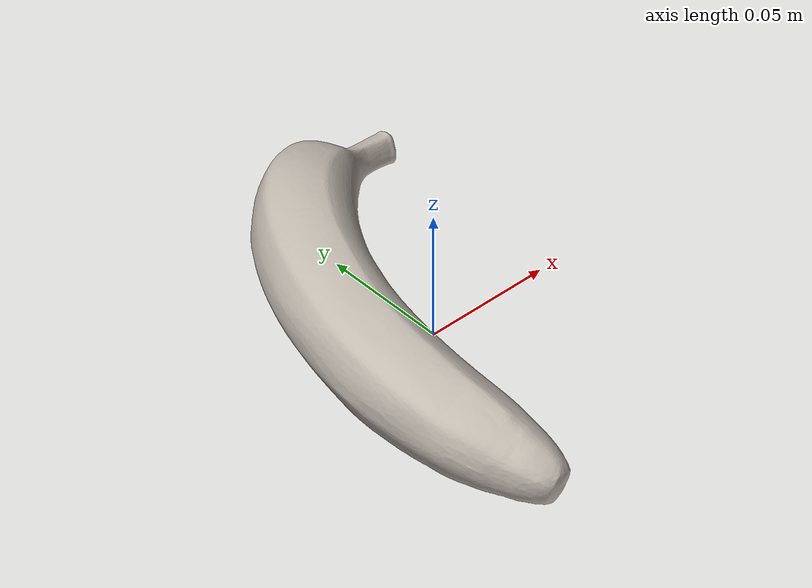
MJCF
<mujoco model="banana">
  <compiler angle="radian" meshdir="." texturedir="."/>
  <asset>
    <mesh name="banana_mesh" file="banana.obj" maxhullvert="64"/>
    <texture name="banana_tex" type="2d" file="banana.png"/>
    <material name="banana_mat" texture="banana_tex" specular="0.25" shininess="0.3"/>
  </asset>
  <worldbody>
    <body name="banana" pos="0 0 0">
      <inertial pos="-0.0188234 0.0140489 0.0171213" quat="0.624651 0.460717 -0.532813 0.337136" mass="0.12" diaginertia="0.00031319 0.000296919 3.25017e-05"/>
      <site name="banana_center" pos="0 0 0" size="0.005" rgba="0 0 0 0"/>
      <geom name="banana_vis0" type="mesh" mesh="banana_mesh" pos="-0.011476 0.0073435 0.000407002" material="banana_mat" group="2" contype="0" conaffinity="0"/>
      <geom name="banana_col1" type="mesh" mesh="banana_mesh" pos="-0.011476 0.0073435 0.000407002" rgba="0.5 0.5 0.5 0.3" group="3" condim="6" friction="1 0.02 0.004"/>
    </body>
  </worldbody>
</mujoco>
